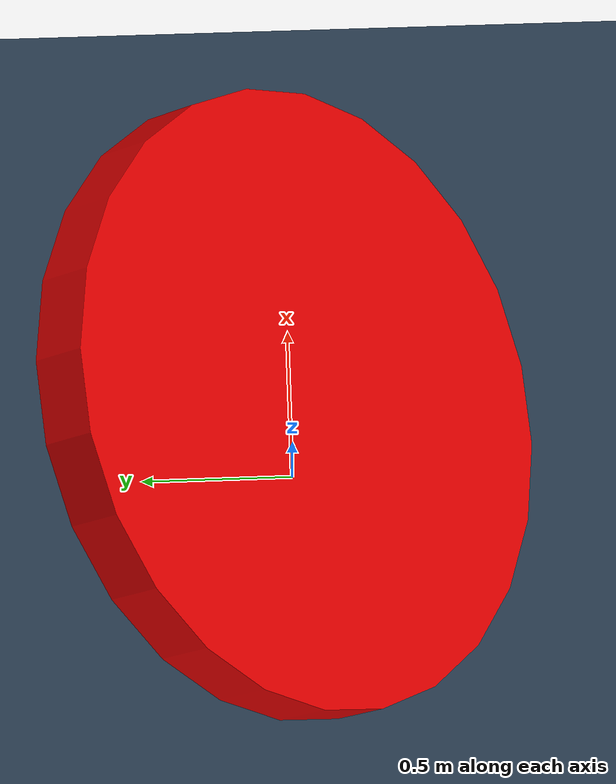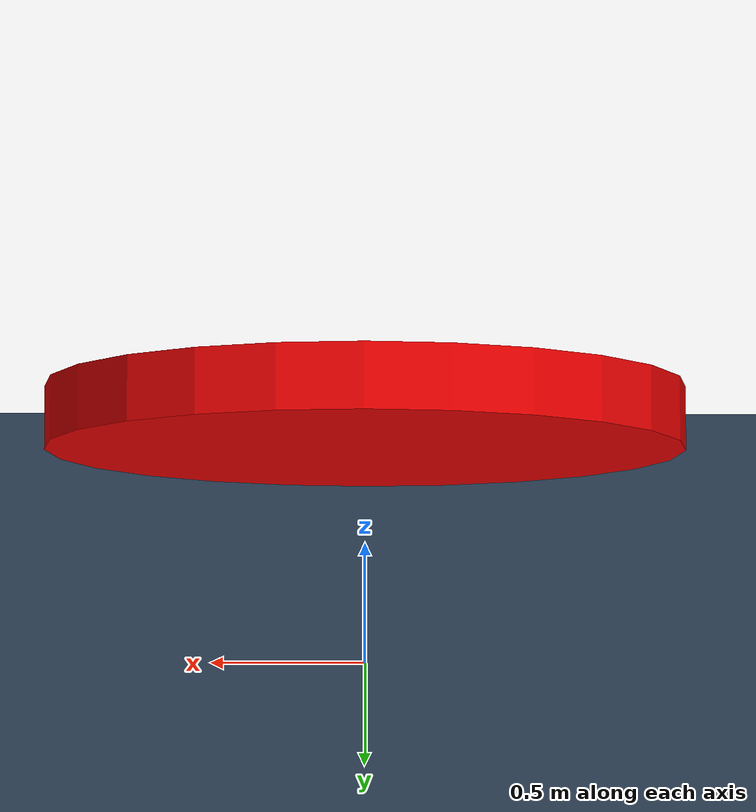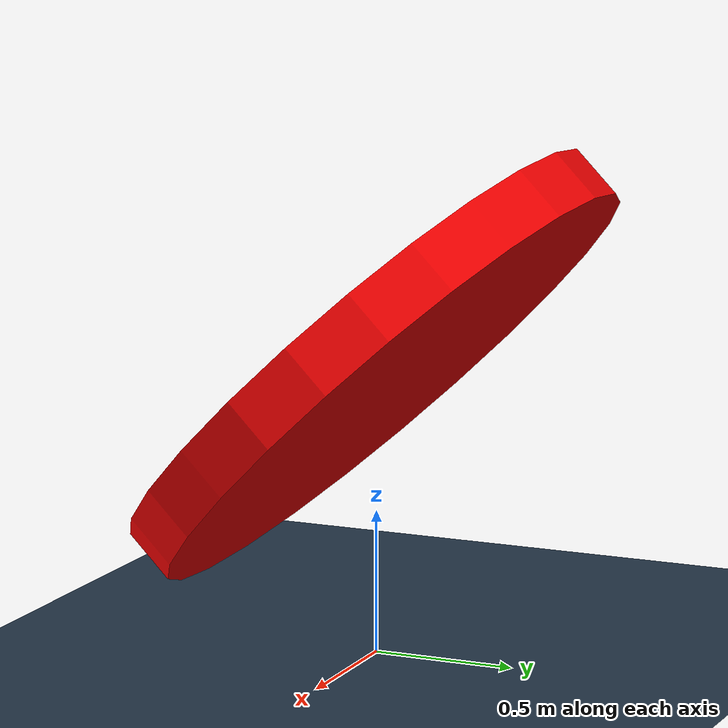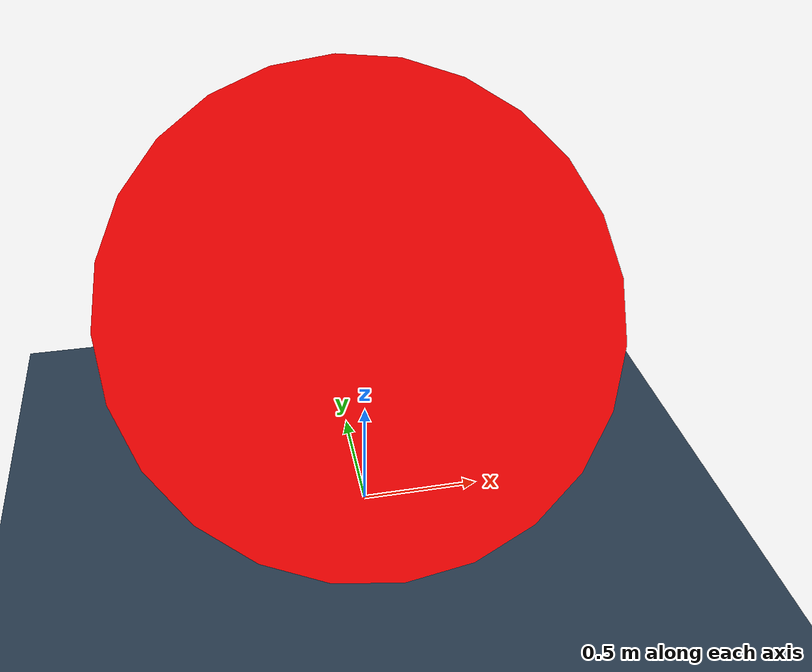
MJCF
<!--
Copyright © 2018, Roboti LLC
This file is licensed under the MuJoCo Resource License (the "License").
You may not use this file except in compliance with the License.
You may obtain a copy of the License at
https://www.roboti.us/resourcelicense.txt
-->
<mujoco>

    <statistic extent="2" meansize=".05"/>

    <option timestep="0.005" solver="Newton" iterations="30" tolerance="1e-10" jacobian="sparse" cone="pyramidal"/>

    <visual>
        <rgba haze="0.15 0.25 0.35 1"/>
        <quality shadowsize="2048"/>
        <map stiffness="700" shadowscale="0.5" fogstart="10" fogend="15" zfar="40" haze="0.3"/>
    </visual>

    <asset>
        <texture type="skybox" builtin="gradient" rgb1="0.3 0.5 0.7" rgb2="0 0 0" width="512" height="512"/>
        <texture name="texplane" type="2d" builtin="checker" rgb1=".2 .3 .4" rgb2=".1 0.15 0.2"
            width="512" height="512" mark="cross" markrgb=".8 .8 .8"/>
        <texture name="texcarpet" type="2d" file="carpet.png"/>
        <texture name="texsponge" type="2d" file="sponge.png"/>
        <texture name="texmarble" type="cube" file="marble.png"/>

        <material name="matplane" reflectance="0.3" texture="texplane" texrepeat="1 1" texuniform="true"/>
        <material name="matcarpet" texture="texcarpet"/>
        <material name="matsponge" texture="texsponge" specular="0.3"/>
        <material name="matmarble" texture="texmarble" rgba=".7 .7 .7 1"/>
    </asset>

    <worldbody>
        <light directional="true" diffuse=".4 .4 .4" specular="0.1 0.1 0.1" pos="0 0 5.0" dir="0 0 -1" castshadow="false"/>
        <light directional="true" diffuse=".6 .6 .6" specular="0.2 0.2 0.2" pos="0 0 4" dir="0 0 -1"/>

        <geom name="ground" type="plane" size="0 0 1" pos="0 0 0" quat="1 0 0 0" material="matplane" condim="1"/>
        <body  pos="0 0 1">
            <geom type="cylinder" name="main-plane" size="1 0.1 0.1"  quat="0.25 0.1025 0 0"  rgba=".9 0 0 1" material="matmarble" group="1" condim="1"/>
        </body>

    </worldbody>
</mujoco>
